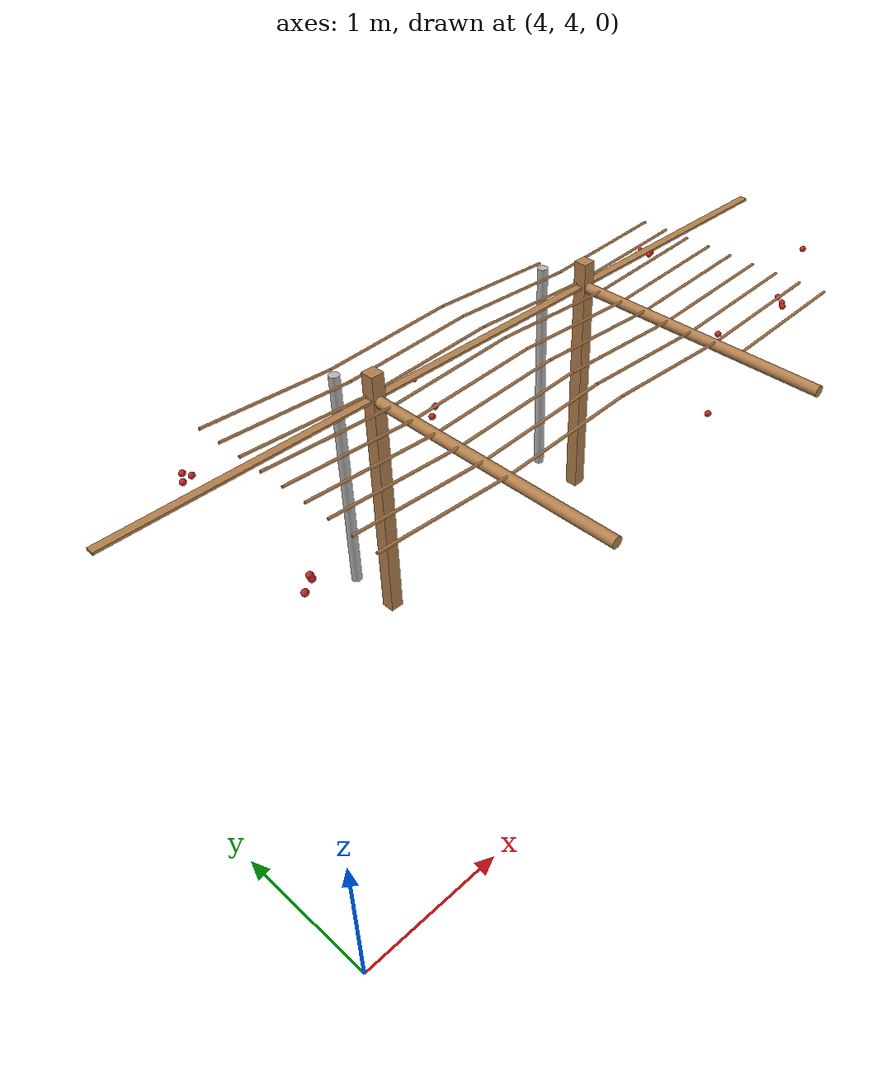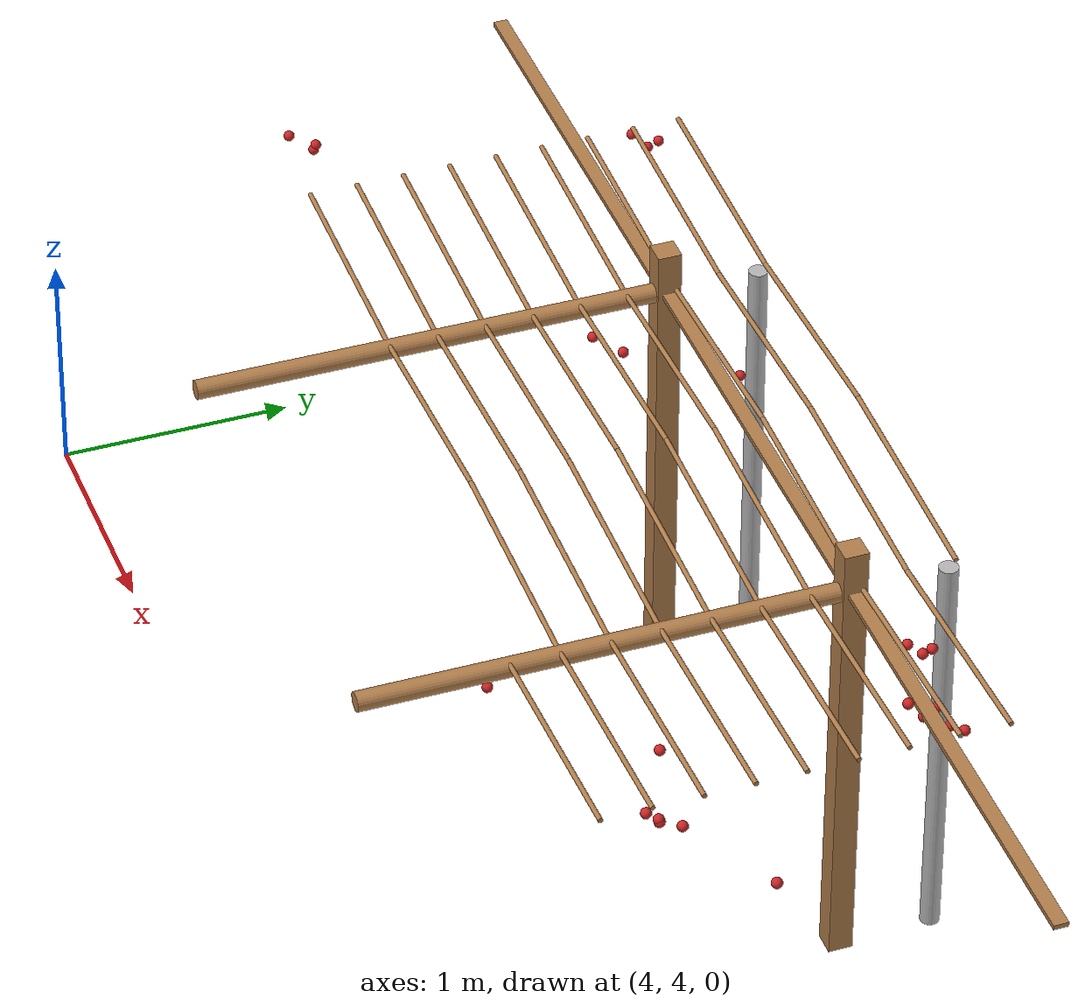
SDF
<sdf version="1.4">
 <model name="pergola">
  <include><name>post_36</name><pose>6.0 6.0 0 0 0 0</pose><uri>model://post</uri></include>
  <include><name>post_47</name><pose>8.0 6.0 0 0 0 0</pose><uri>model://post</uri></include>
  <link name="beam_25">
   <pose>5.0 6.0 1.81 0 0 0</pose>
   <collision name="collision"><geometry><box><size>2.0 0.06 0.02</size></box></geometry></collision>
   <visual name="visual">
    <geometry><box><size>2.0 0.06 0.02</size></box></geometry>
    <material><script><name>Gazebo/Wood</name></script></material>
   </visual>
   <inertial>
    <mass>5</mass>
    <inertia>
     <ixx>0.0016666666666666668</ixx>
     <ixy>0.0</ixy>
     <ixz>0.0</ixz>
     <iyy>1.6681666666666664</iyy>
     <iyz>0.0</iyz>
     <izz>1.6668333333333332</izz>
    </inertia>
   </inertial>
  </link>
  <link name="beam_36">
   <pose>7.0 6.0 1.81 0 0 0</pose>
   <collision name="collision"><geometry><box><size>2.0 0.06 0.02</size></box></geometry></collision>
   <visual name="visual">
    <geometry><box><size>2.0 0.06 0.02</size></box></geometry>
    <material><script><name>Gazebo/Wood</name></script></material>
   </visual>
   <inertial>
    <mass>5</mass>
    <inertia>
     <ixx>0.0016666666666666668</ixx>
     <ixy>0.0</ixy>
     <ixz>0.0</ixz>
     <iyy>1.6681666666666664</iyy>
     <iyz>0.0</iyz>
     <izz>1.6668333333333332</izz>
    </inertia>
   </inertial>
  </link>
  <link name="beam_47">
   <pose>9.0 6.0 1.81 0 0 0</pose>
   <collision name="collision"><geometry><box><size>2.0 0.06 0.02</size></box></geometry></collision>
   <visual name="visual">
    <geometry><box><size>2.0 0.06 0.02</size></box></geometry>
    <material><script><name>Gazebo/Wood</name></script></material>
   </visual>
   <inertial>
    <mass>5</mass>
    <inertia>
     <ixx>0.0016666666666666668</ixx>
     <ixy>0.0</ixy>
     <ixz>0.0</ixz>
     <iyy>1.6681666666666664</iyy>
     <iyz>0.0</iyz>
     <izz>1.6668333333333332</izz>
    </inertia>
   </inertial>
  </link>
  <include><name>tree_33</name><pose>6.0 6.4 0 0 0 0</pose><uri>model://tree_trunk</uri></include>
  <include><name>tree_43</name><pose>8.0 6.4 0 0 0 0</pose><uri>model://tree_trunk</uri></include>
  <link name="baseBranch_32">
   <pose>6.0 5.0 1.8 1.5707963267948966 0 0</pose>
   <collision name="collision">
    <geometry><cylinder><radius>0.04</radius><length>1.94</length></cylinder></geometry>
   </collision>
   <visual name="visual">
    <geometry><cylinder><radius>0.04</radius><length>1.94</length></cylinder></geometry>
    <material><script><name>Gazebo/WoodFloor</name></script></material>
   </visual>
   <inertial>
    <mass>10</mass>
    <inertia>
     <ixx>3.140333333333333</ixx>
     <ixy>0.0</ixy>
     <ixz>0.0</ixz>
     <iyy>3.140333333333333</iyy>
     <iyz>0.0</iyz>
     <izz>0.008</izz>
    </inertia>
   </inertial>
  </link>
  <link name="baseBranch_42">
   <pose>8.0 5.0 1.8 1.5707963267948966 0 0</pose>
   <collision name="collision">
    <geometry><cylinder><radius>0.04</radius><length>1.94</length></cylinder></geometry>
   </collision>
   <visual name="visual">
    <geometry><cylinder><radius>0.04</radius><length>1.94</length></cylinder></geometry>
    <material><script><name>Gazebo/WoodFloor</name></script></material>
   </visual>
   <inertial>
    <mass>10</mass>
    <inertia>
     <ixx>3.140333333333333</ixx>
     <ixy>0.0</ixy>
     <ixz>0.0</ixz>
     <iyy>3.140333333333333</iyy>
     <iyz>0.0</iyz>
     <izz>0.008</izz>
    </inertia>
   </inertial>
  </link>
  <link name="vine_449">
   <pose>5.5 4.830000000000001 1.85 0 -1.5208379310729538 0</pose>
   <collision name="collision">
    <geometry><cylinder><radius>0.01</radius><length>1.0012492197250393</length></cylinder></geometry>
   </collision>
   <visual name="visual">
    <geometry><cylinder><radius>0.01</radius><length>1.0012492197250393</length></cylinder></geometry>
    <material><script><name>Gazebo/WoodFloor</name></script></material>
   </visual>
   <inertial>
    <mass>5</mass>
    <inertia>
     <ixx>0.41783333333333345</ixx>
     <ixy>0.0</ixy>
     <ixz>0.0</ixz>
     <iyy>0.41783333333333345</iyy>
     <iyz>0.0</iyz>
     <izz>0.00025</izz>
    </inertia>
   </inertial>
  </link>
  <link name="vine_451">
   <pose>5.5 5.03 1.85 0 -1.5208379310729538 0</pose>
   <collision name="collision">
    <geometry><cylinder><radius>0.01</radius><length>1.0012492197250393</length></cylinder></geometry>
   </collision>
   <visual name="visual">
    <geometry><cylinder><radius>0.01</radius><length>1.0012492197250393</length></cylinder></geometry>
    <material><script><name>Gazebo/WoodFloor</name></script></material>
   </visual>
   <inertial>
    <mass>5</mass>
    <inertia>
     <ixx>0.41783333333333345</ixx>
     <ixy>0.0</ixy>
     <ixz>0.0</ixz>
     <iyy>0.41783333333333345</iyy>
     <iyz>0.0</iyz>
     <izz>0.00025</izz>
    </inertia>
   </inertial>
  </link>
  <link name="vine_453">
   <pose>5.5 5.23 1.85 0 -1.5208379310729538 0</pose>
   <collision name="collision">
    <geometry><cylinder><radius>0.01</radius><length>1.0012492197250393</length></cylinder></geometry>
   </collision>
   <visual name="visual">
    <geometry><cylinder><radius>0.01</radius><length>1.0012492197250393</length></cylinder></geometry>
    <material><script><name>Gazebo/WoodFloor</name></script></material>
   </visual>
   <inertial>
    <mass>5</mass>
    <inertia>
     <ixx>0.41783333333333345</ixx>
     <ixy>0.0</ixy>
     <ixz>0.0</ixz>
     <iyy>0.41783333333333345</iyy>
     <iyz>0.0</iyz>
     <izz>0.00025</izz>
    </inertia>
   </inertial>
  </link>
  <link name="vine_455">
   <pose>5.5 5.430000000000001 1.85 0 -1.5208379310729538 0</pose>
   <collision name="collision">
    <geometry><cylinder><radius>0.01</radius><length>1.0012492197250393</length></cylinder></geometry>
   </collision>
   <visual name="visual">
    <geometry><cylinder><radius>0.01</radius><length>1.0012492197250393</length></cylinder></geometry>
    <material><script><name>Gazebo/WoodFloor</name></script></material>
   </visual>
   <inertial>
    <mass>5</mass>
    <inertia>
     <ixx>0.41783333333333345</ixx>
     <ixy>0.0</ixy>
     <ixz>0.0</ixz>
     <iyy>0.41783333333333345</iyy>
     <iyz>0.0</iyz>
     <izz>0.00025</izz>
    </inertia>
   </inertial>
  </link>
  <link name="vine_457">
   <pose>5.5 5.630000000000001 1.85 0 -1.5208379310729538 0</pose>
   <collision name="collision">
    <geometry><cylinder><radius>0.01</radius><length>1.0012492197250393</length></cylinder></geometry>
   </collision>
   <visual name="visual">
    <geometry><cylinder><radius>0.01</radius><length>1.0012492197250393</length></cylinder></geometry>
    <material><script><name>Gazebo/WoodFloor</name></script></material>
   </visual>
   <inertial>
    <mass>5</mass>
    <inertia>
     <ixx>0.41783333333333345</ixx>
     <ixy>0.0</ixy>
     <ixz>0.0</ixz>
     <iyy>0.41783333333333345</iyy>
     <iyz>0.0</iyz>
     <izz>0.00025</izz>
    </inertia>
   </inertial>
  </link>
  <link name="vine_459">
   <pose>5.5 5.830000000000001 1.85 0 -1.5208379310729538 0</pose>
   <collision name="collision">
    <geometry><cylinder><radius>0.01</radius><length>1.0012492197250393</length></cylinder></geometry>
   </collision>
   <visual name="visual">
    <geometry><cylinder><radius>0.01</radius><length>1.0012492197250393</length></cylinder></geometry>
    <material><script><name>Gazebo/WoodFloor</name></script></material>
   </visual>
   <inertial>
    <mass>5</mass>
    <inertia>
     <ixx>0.41783333333333345</ixx>
     <ixy>0.0</ixy>
     <ixz>0.0</ixz>
     <iyy>0.41783333333333345</iyy>
     <iyz>0.0</iyz>
     <izz>0.00025</izz>
    </inertia>
   </inertial>
  </link>
  <link name="vine_461">
   <pose>5.5 6.03 1.85 0 -1.5208379310729538 0</pose>
   <collision name="collision">
    <geometry><cylinder><radius>0.01</radius><length>1.0012492197250393</length></cylinder></geometry>
   </collision>
   <visual name="visual">
    <geometry><cylinder><radius>0.01</radius><length>1.0012492197250393</length></cylinder></geometry>
    <material><script><name>Gazebo/WoodFloor</name></script></material>
   </visual>
   <inertial>
    <mass>5</mass>
    <inertia>
     <ixx>0.41783333333333345</ixx>
     <ixy>0.0</ixy>
     <ixz>0.0</ixz>
     <iyy>0.41783333333333345</iyy>
     <iyz>0.0</iyz>
     <izz>0.00025</izz>
    </inertia>
   </inertial>
  </link>
  <link name="vine_463">
   <pose>5.5 6.23 1.85 0 -1.5208379310729538 0</pose>
   <collision name="collision">
    <geometry><cylinder><radius>0.01</radius><length>1.0012492197250393</length></cylinder></geometry>
   </collision>
   <visual name="visual">
    <geometry><cylinder><radius>0.01</radius><length>1.0012492197250393</length></cylinder></geometry>
    <material><script><name>Gazebo/WoodFloor</name></script></material>
   </visual>
   <inertial>
    <mass>5</mass>
    <inertia>
     <ixx>0.41783333333333345</ixx>
     <ixy>0.0</ixy>
     <ixz>0.0</ixz>
     <iyy>0.41783333333333345</iyy>
     <iyz>0.0</iyz>
     <izz>0.00025</izz>
    </inertia>
   </inertial>
  </link>
  <link name="vine_465">
   <pose>5.5 6.430000000000001 1.85 0 -1.5208379310729538 0</pose>
   <collision name="collision">
    <geometry><cylinder><radius>0.01</radius><length>1.0012492197250393</length></cylinder></geometry>
   </collision>
   <visual name="visual">
    <geometry><cylinder><radius>0.01</radius><length>1.0012492197250393</length></cylinder></geometry>
    <material><script><name>Gazebo/WoodFloor</name></script></material>
   </visual>
   <inertial>
    <mass>5</mass>
    <inertia>
     <ixx>0.41783333333333345</ixx>
     <ixy>0.0</ixy>
     <ixz>0.0</ixz>
     <iyy>0.41783333333333345</iyy>
     <iyz>0.0</iyz>
     <izz>0.00025</izz>
    </inertia>
   </inertial>
  </link>
  <link name="vine_648">
   <pose>6.5 4.830000000000001 1.85 0 1.5208379310729538 0</pose>
   <collision name="collision">
    <geometry><cylinder><radius>0.01</radius><length>1.0012492197250393</length></cylinder></geometry>
   </collision>
   <visual name="visual">
    <geometry><cylinder><radius>0.01</radius><length>1.0012492197250393</length></cylinder></geometry>
    <material><script><name>Gazebo/WoodFloor</name></script></material>
   </visual>
   <inertial>
    <mass>5</mass>
    <inertia>
     <ixx>0.41783333333333345</ixx>
     <ixy>0.0</ixy>
     <ixz>0.0</ixz>
     <iyy>0.41783333333333345</iyy>
     <iyz>0.0</iyz>
     <izz>0.00025</izz>
    </inertia>
   </inertial>
  </link>
  <link name="vine_649">
   <pose>7.5 4.830000000000001 1.85 0 -1.5208379310729538 0</pose>
   <collision name="collision">
    <geometry><cylinder><radius>0.01</radius><length>1.0012492197250393</length></cylinder></geometry>
   </collision>
   <visual name="visual">
    <geometry><cylinder><radius>0.01</radius><length>1.0012492197250393</length></cylinder></geometry>
    <material><script><name>Gazebo/WoodFloor</name></script></material>
   </visual>
   <inertial>
    <mass>5</mass>
    <inertia>
     <ixx>0.41783333333333345</ixx>
     <ixy>0.0</ixy>
     <ixz>0.0</ixz>
     <iyy>0.41783333333333345</iyy>
     <iyz>0.0</iyz>
     <izz>0.00025</izz>
    </inertia>
   </inertial>
  </link>
  <link name="vine_650">
   <pose>6.5 5.03 1.85 0 1.5208379310729538 0</pose>
   <collision name="collision">
    <geometry><cylinder><radius>0.01</radius><length>1.0012492197250393</length></cylinder></geometry>
   </collision>
   <visual name="visual">
    <geometry><cylinder><radius>0.01</radius><length>1.0012492197250393</length></cylinder></geometry>
    <material><script><name>Gazebo/WoodFloor</name></script></material>
   </visual>
   <inertial>
    <mass>5</mass>
    <inertia>
     <ixx>0.41783333333333345</ixx>
     <ixy>0.0</ixy>
     <ixz>0.0</ixz>
     <iyy>0.41783333333333345</iyy>
     <iyz>0.0</iyz>
     <izz>0.00025</izz>
    </inertia>
   </inertial>
  </link>
  <link name="vine_651">
   <pose>7.5 5.03 1.85 0 -1.5208379310729538 0</pose>
   <collision name="collision">
    <geometry><cylinder><radius>0.01</radius><length>1.0012492197250393</length></cylinder></geometry>
   </collision>
   <visual name="visual">
    <geometry><cylinder><radius>0.01</radius><length>1.0012492197250393</length></cylinder></geometry>
    <material><script><name>Gazebo/WoodFloor</name></script></material>
   </visual>
   <inertial>
    <mass>5</mass>
    <inertia>
     <ixx>0.41783333333333345</ixx>
     <ixy>0.0</ixy>
     <ixz>0.0</ixz>
     <iyy>0.41783333333333345</iyy>
     <iyz>0.0</iyz>
     <izz>0.00025</izz>
    </inertia>
   </inertial>
  </link>
  <link name="vine_652">
   <pose>6.5 5.23 1.85 0 1.5208379310729538 0</pose>
   <collision name="collision">
    <geometry><cylinder><radius>0.01</radius><length>1.0012492197250393</length></cylinder></geometry>
   </collision>
   <visual name="visual">
    <geometry><cylinder><radius>0.01</radius><length>1.0012492197250393</length></cylinder></geometry>
    <material><script><name>Gazebo/WoodFloor</name></script></material>
   </visual>
   <inertial>
    <mass>5</mass>
    <inertia>
     <ixx>0.41783333333333345</ixx>
     <ixy>0.0</ixy>
     <ixz>0.0</ixz>
     <iyy>0.41783333333333345</iyy>
     <iyz>0.0</iyz>
     <izz>0.00025</izz>
    </inertia>
   </inertial>
  </link>
  <link name="vine_653">
   <pose>7.5 5.23 1.85 0 -1.5208379310729538 0</pose>
   <collision name="collision">
    <geometry><cylinder><radius>0.01</radius><length>1.0012492197250393</length></cylinder></geometry>
   </collision>
   <visual name="visual">
    <geometry><cylinder><radius>0.01</radius><length>1.0012492197250393</length></cylinder></geometry>
    <material><script><name>Gazebo/WoodFloor</name></script></material>
   </visual>
   <inertial>
    <mass>5</mass>
    <inertia>
     <ixx>0.41783333333333345</ixx>
     <ixy>0.0</ixy>
     <ixz>0.0</ixz>
     <iyy>0.41783333333333345</iyy>
     <iyz>0.0</iyz>
     <izz>0.00025</izz>
    </inertia>
   </inertial>
  </link>
  <link name="vine_654">
   <pose>6.5 5.430000000000001 1.85 0 1.5208379310729538 0</pose>
   <collision name="collision">
    <geometry><cylinder><radius>0.01</radius><length>1.0012492197250393</length></cylinder></geometry>
   </collision>
   <visual name="visual">
    <geometry><cylinder><radius>0.01</radius><length>1.0012492197250393</length></cylinder></geometry>
    <material><script><name>Gazebo/WoodFloor</name></script></material>
   </visual>
   <inertial>
    <mass>5</mass>
    <inertia>
     <ixx>0.41783333333333345</ixx>
     <ixy>0.0</ixy>
     <ixz>0.0</ixz>
     <iyy>0.41783333333333345</iyy>
     <iyz>0.0</iyz>
     <izz>0.00025</izz>
    </inertia>
   </inertial>
  </link>
  <link name="vine_655">
   <pose>7.5 5.430000000000001 1.85 0 -1.5208379310729538 0</pose>
   <collision name="collision">
    <geometry><cylinder><radius>0.01</radius><length>1.0012492197250393</length></cylinder></geometry>
   </collision>
   <visual name="visual">
    <geometry><cylinder><radius>0.01</radius><length>1.0012492197250393</length></cylinder></geometry>
    <material><script><name>Gazebo/WoodFloor</name></script></material>
   </visual>
   <inertial>
    <mass>5</mass>
    <inertia>
     <ixx>0.41783333333333345</ixx>
     <ixy>0.0</ixy>
     <ixz>0.0</ixz>
     <iyy>0.41783333333333345</iyy>
     <iyz>0.0</iyz>
     <izz>0.00025</izz>
    </inertia>
   </inertial>
  </link>
  <link name="vine_656">
   <pose>6.5 5.630000000000001 1.85 0 1.5208379310729538 0</pose>
   <collision name="collision">
    <geometry><cylinder><radius>0.01</radius><length>1.0012492197250393</length></cylinder></geometry>
   </collision>
   <visual name="visual">
    <geometry><cylinder><radius>0.01</radius><length>1.0012492197250393</length></cylinder></geometry>
    <material><script><name>Gazebo/WoodFloor</name></script></material>
   </visual>
   <inertial>
    <mass>5</mass>
    <inertia>
     <ixx>0.41783333333333345</ixx>
     <ixy>0.0</ixy>
     <ixz>0.0</ixz>
     <iyy>0.41783333333333345</iyy>
     <iyz>0.0</iyz>
     <izz>0.00025</izz>
    </inertia>
   </inertial>
  </link>
  <link name="vine_657">
   <pose>7.5 5.630000000000001 1.85 0 -1.5208379310729538 0</pose>
   <collision name="collision">
    <geometry><cylinder><radius>0.01</radius><length>1.0012492197250393</length></cylinder></geometry>
   </collision>
   <visual name="visual">
    <geometry><cylinder><radius>0.01</radius><length>1.0012492197250393</length></cylinder></geometry>
    <material><script><name>Gazebo/WoodFloor</name></script></material>
   </visual>
   <inertial>
    <mass>5</mass>
    <inertia>
     <ixx>0.41783333333333345</ixx>
     <ixy>0.0</ixy>
     <ixz>0.0</ixz>
     <iyy>0.41783333333333345</iyy>
     <iyz>0.0</iyz>
     <izz>0.00025</izz>
    </inertia>
   </inertial>
  </link>
  <link name="vine_658">
   <pose>6.5 5.830000000000001 1.85 0 1.5208379310729538 0</pose>
   <collision name="collision">
    <geometry><cylinder><radius>0.01</radius><length>1.0012492197250393</length></cylinder></geometry>
   </collision>
   <visual name="visual">
    <geometry><cylinder><radius>0.01</radius><length>1.0012492197250393</length></cylinder></geometry>
    <material><script><name>Gazebo/WoodFloor</name></script></material>
   </visual>
   <inertial>
    <mass>5</mass>
    <inertia>
     <ixx>0.41783333333333345</ixx>
     <ixy>0.0</ixy>
     <ixz>0.0</ixz>
     <iyy>0.41783333333333345</iyy>
     <iyz>0.0</iyz>
     <izz>0.00025</izz>
    </inertia>
   </inertial>
  </link>
  <link name="vine_659">
   <pose>7.5 5.830000000000001 1.85 0 -1.5208379310729538 0</pose>
   <collision name="collision">
    <geometry><cylinder><radius>0.01</radius><length>1.0012492197250393</length></cylinder></geometry>
   </collision>
   <visual name="visual">
    <geometry><cylinder><radius>0.01</radius><length>1.0012492197250393</length></cylinder></geometry>
    <material><script><name>Gazebo/WoodFloor</name></script></material>
   </visual>
   <inertial>
    <mass>5</mass>
    <inertia>
     <ixx>0.41783333333333345</ixx>
     <ixy>0.0</ixy>
     <ixz>0.0</ixz>
     <iyy>0.41783333333333345</iyy>
     <iyz>0.0</iyz>
     <izz>0.00025</izz>
    </inertia>
   </inertial>
  </link>
  <link name="vine_660">
   <pose>6.5 6.03 1.85 0 1.5208379310729538 0</pose>
   <collision name="collision">
    <geometry><cylinder><radius>0.01</radius><length>1.0012492197250393</length></cylinder></geometry>
   </collision>
   <visual name="visual">
    <geometry><cylinder><radius>0.01</radius><length>1.0012492197250393</length></cylinder></geometry>
    <material><script><name>Gazebo/WoodFloor</name></script></material>
   </visual>
   <inertial>
    <mass>5</mass>
    <inertia>
     <ixx>0.41783333333333345</ixx>
     <ixy>0.0</ixy>
     <ixz>0.0</ixz>
     <iyy>0.41783333333333345</iyy>
     <iyz>0.0</iyz>
     <izz>0.00025</izz>
    </inertia>
   </inertial>
  </link>
  <link name="vine_661">
   <pose>7.5 6.03 1.85 0 -1.5208379310729538 0</pose>
   <collision name="collision">
    <geometry><cylinder><radius>0.01</radius><length>1.0012492197250393</length></cylinder></geometry>
   </collision>
   <visual name="visual">
    <geometry><cylinder><radius>0.01</radius><length>1.0012492197250393</length></cylinder></geometry>
    <material><script><name>Gazebo/WoodFloor</name></script></material>
   </visual>
   <inertial>
    <mass>5</mass>
    <inertia>
     <ixx>0.41783333333333345</ixx>
     <ixy>0.0</ixy>
     <ixz>0.0</ixz>
     <iyy>0.41783333333333345</iyy>
     <iyz>0.0</iyz>
     <izz>0.00025</izz>
    </inertia>
   </inertial>
  </link>
  <link name="vine_662">
   <pose>6.5 6.23 1.85 0 1.5208379310729538 0</pose>
   <collision name="collision">
    <geometry><cylinder><radius>0.01</radius><length>1.0012492197250393</length></cylinder></geometry>
   </collision>
   <visual name="visual">
    <geometry><cylinder><radius>0.01</radius><length>1.0012492197250393</length></cylinder></geometry>
    <material><script><name>Gazebo/WoodFloor</name></script></material>
   </visual>
   <inertial>
    <mass>5</mass>
    <inertia>
     <ixx>0.41783333333333345</ixx>
     <ixy>0.0</ixy>
     <ixz>0.0</ixz>
     <iyy>0.41783333333333345</iyy>
     <iyz>0.0</iyz>
     <izz>0.00025</izz>
    </inertia>
   </inertial>
  </link>
  <link name="vine_663">
   <pose>7.5 6.23 1.85 0 -1.5208379310729538 0</pose>
   <collision name="collision">
    <geometry><cylinder><radius>0.01</radius><length>1.0012492197250393</length></cylinder></geometry>
   </collision>
   <visual name="visual">
    <geometry><cylinder><radius>0.01</radius><length>1.0012492197250393</length></cylinder></geometry>
    <material><script><name>Gazebo/WoodFloor</name></script></material>
   </visual>
   <inertial>
    <mass>5</mass>
    <inertia>
     <ixx>0.41783333333333345</ixx>
     <ixy>0.0</ixy>
     <ixz>0.0</ixz>
     <iyy>0.41783333333333345</iyy>
     <iyz>0.0</iyz>
     <izz>0.00025</izz>
    </inertia>
   </inertial>
  </link>
  <link name="vine_664">
   <pose>6.5 6.430000000000001 1.85 0 1.5208379310729538 0</pose>
   <collision name="collision">
    <geometry><cylinder><radius>0.01</radius><length>1.0012492197250393</length></cylinder></geometry>
   </collision>
   <visual name="visual">
    <geometry><cylinder><radius>0.01</radius><length>1.0012492197250393</length></cylinder></geometry>
    <material><script><name>Gazebo/WoodFloor</name></script></material>
   </visual>
   <inertial>
    <mass>5</mass>
    <inertia>
     <ixx>0.41783333333333345</ixx>
     <ixy>0.0</ixy>
     <ixz>0.0</ixz>
     <iyy>0.41783333333333345</iyy>
     <iyz>0.0</iyz>
     <izz>0.00025</izz>
    </inertia>
   </inertial>
  </link>
  <link name="vine_665">
   <pose>7.5 6.430000000000001 1.85 0 -1.5208379310729538 0</pose>
   <collision name="collision">
    <geometry><cylinder><radius>0.01</radius><length>1.0012492197250393</length></cylinder></geometry>
   </collision>
   <visual name="visual">
    <geometry><cylinder><radius>0.01</radius><length>1.0012492197250393</length></cylinder></geometry>
    <material><script><name>Gazebo/WoodFloor</name></script></material>
   </visual>
   <inertial>
    <mass>5</mass>
    <inertia>
     <ixx>0.41783333333333345</ixx>
     <ixy>0.0</ixy>
     <ixz>0.0</ixz>
     <iyy>0.41783333333333345</iyy>
     <iyz>0.0</iyz>
     <izz>0.00025</izz>
    </inertia>
   </inertial>
  </link>
  <link name="vine_846">
   <pose>8.5 4.630000000000001 1.85 0 1.5208379310729538 0</pose>
   <collision name="collision">
    <geometry><cylinder><radius>0.01</radius><length>1.0012492197250393</length></cylinder></geometry>
   </collision>
   <visual name="visual">
    <geometry><cylinder><radius>0.01</radius><length>1.0012492197250393</length></cylinder></geometry>
    <material><script><name>Gazebo/WoodFloor</name></script></material>
   </visual>
   <inertial>
    <mass>5</mass>
    <inertia>
     <ixx>0.41783333333333345</ixx>
     <ixy>0.0</ixy>
     <ixz>0.0</ixz>
     <iyy>0.41783333333333345</iyy>
     <iyz>0.0</iyz>
     <izz>0.00025</izz>
    </inertia>
   </inertial>
  </link>
  <link name="vine_848">
   <pose>8.5 4.830000000000001 1.85 0 1.5208379310729538 0</pose>
   <collision name="collision">
    <geometry><cylinder><radius>0.01</radius><length>1.0012492197250393</length></cylinder></geometry>
   </collision>
   <visual name="visual">
    <geometry><cylinder><radius>0.01</radius><length>1.0012492197250393</length></cylinder></geometry>
    <material><script><name>Gazebo/WoodFloor</name></script></material>
   </visual>
   <inertial>
    <mass>5</mass>
    <inertia>
     <ixx>0.41783333333333345</ixx>
     <ixy>0.0</ixy>
     <ixz>0.0</ixz>
     <iyy>0.41783333333333345</iyy>
     <iyz>0.0</iyz>
     <izz>0.00025</izz>
    </inertia>
   </inertial>
  </link>
  <link name="vine_850">
   <pose>8.5 5.03 1.85 0 1.5208379310729538 0</pose>
   <collision name="collision">
    <geometry><cylinder><radius>0.01</radius><length>1.0012492197250393</length></cylinder></geometry>
   </collision>
   <visual name="visual">
    <geometry><cylinder><radius>0.01</radius><length>1.0012492197250393</length></cylinder></geometry>
    <material><script><name>Gazebo/WoodFloor</name></script></material>
   </visual>
   <inertial>
    <mass>5</mass>
    <inertia>
     <ixx>0.41783333333333345</ixx>
     <ixy>0.0</ixy>
     <ixz>0.0</ixz>
     <iyy>0.41783333333333345</iyy>
     <iyz>0.0</iyz>
     <izz>0.00025</izz>
    </inertia>
   </inertial>
  </link>
  <link name="vine_852">
   <pose>8.5 5.23 1.85 0 1.5208379310729538 0</pose>
   <collision name="collision">
    <geometry><cylinder><radius>0.01</radius><length>1.0012492197250393</length></cylinder></geometry>
   </collision>
   <visual name="visual">
    <geometry><cylinder><radius>0.01</radius><length>1.0012492197250393</length></cylinder></geometry>
    <material><script><name>Gazebo/WoodFloor</name></script></material>
   </visual>
   <inertial>
    <mass>5</mass>
    <inertia>
     <ixx>0.41783333333333345</ixx>
     <ixy>0.0</ixy>
     <ixz>0.0</ixz>
     <iyy>0.41783333333333345</iyy>
     <iyz>0.0</iyz>
     <izz>0.00025</izz>
    </inertia>
   </inertial>
  </link>
  <link name="vine_854">
   <pose>8.5 5.430000000000001 1.85 0 1.5208379310729538 0</pose>
   <collision name="collision">
    <geometry><cylinder><radius>0.01</radius><length>1.0012492197250393</length></cylinder></geometry>
   </collision>
   <visual name="visual">
    <geometry><cylinder><radius>0.01</radius><length>1.0012492197250393</length></cylinder></geometry>
    <material><script><name>Gazebo/WoodFloor</name></script></material>
   </visual>
   <inertial>
    <mass>5</mass>
    <inertia>
     <ixx>0.41783333333333345</ixx>
     <ixy>0.0</ixy>
     <ixz>0.0</ixz>
     <iyy>0.41783333333333345</iyy>
     <iyz>0.0</iyz>
     <izz>0.00025</izz>
    </inertia>
   </inertial>
  </link>
  <link name="vine_856">
   <pose>8.5 5.630000000000001 1.85 0 1.5208379310729538 0</pose>
   <collision name="collision">
    <geometry><cylinder><radius>0.01</radius><length>1.0012492197250393</length></cylinder></geometry>
   </collision>
   <visual name="visual">
    <geometry><cylinder><radius>0.01</radius><length>1.0012492197250393</length></cylinder></geometry>
    <material><script><name>Gazebo/WoodFloor</name></script></material>
   </visual>
   <inertial>
    <mass>5</mass>
    <inertia>
     <ixx>0.41783333333333345</ixx>
     <ixy>0.0</ixy>
     <ixz>0.0</ixz>
     <iyy>0.41783333333333345</iyy>
     <iyz>0.0</iyz>
     <izz>0.00025</izz>
    </inertia>
   </inertial>
  </link>
  <link name="vine_858">
   <pose>8.5 5.830000000000001 1.85 0 1.5208379310729538 0</pose>
   <collision name="collision">
    <geometry><cylinder><radius>0.01</radius><length>1.0012492197250393</length></cylinder></geometry>
   </collision>
   <visual name="visual">
    <geometry><cylinder><radius>0.01</radius><length>1.0012492197250393</length></cylinder></geometry>
    <material><script><name>Gazebo/WoodFloor</name></script></material>
   </visual>
   <inertial>
    <mass>5</mass>
    <inertia>
     <ixx>0.41783333333333345</ixx>
     <ixy>0.0</ixy>
     <ixz>0.0</ixz>
     <iyy>0.41783333333333345</iyy>
     <iyz>0.0</iyz>
     <izz>0.00025</izz>
    </inertia>
   </inertial>
  </link>
  <link name="vine_860">
   <pose>8.5 6.03 1.85 0 1.5208379310729538 0</pose>
   <collision name="collision">
    <geometry><cylinder><radius>0.01</radius><length>1.0012492197250393</length></cylinder></geometry>
   </collision>
   <visual name="visual">
    <geometry><cylinder><radius>0.01</radius><length>1.0012492197250393</length></cylinder></geometry>
    <material><script><name>Gazebo/WoodFloor</name></script></material>
   </visual>
   <inertial>
    <mass>5</mass>
    <inertia>
     <ixx>0.41783333333333345</ixx>
     <ixy>0.0</ixy>
     <ixz>0.0</ixz>
     <iyy>0.41783333333333345</iyy>
     <iyz>0.0</iyz>
     <izz>0.00025</izz>
    </inertia>
   </inertial>
  </link>
  <link name="vine_862">
   <pose>8.5 6.23 1.85 0 1.5208379310729538 0</pose>
   <collision name="collision">
    <geometry><cylinder><radius>0.01</radius><length>1.0012492197250393</length></cylinder></geometry>
   </collision>
   <visual name="visual">
    <geometry><cylinder><radius>0.01</radius><length>1.0012492197250393</length></cylinder></geometry>
    <material><script><name>Gazebo/WoodFloor</name></script></material>
   </visual>
   <inertial>
    <mass>5</mass>
    <inertia>
     <ixx>0.41783333333333345</ixx>
     <ixy>0.0</ixy>
     <ixz>0.0</ixz>
     <iyy>0.41783333333333345</iyy>
     <iyz>0.0</iyz>
     <izz>0.00025</izz>
    </inertia>
   </inertial>
  </link>
  <link name="fruit_32">
   <pose>8.861666966088686 4.857711012494044 1.7282393560205762 0 0 0</pose>
   <collision name="fruit_collision_32"><geometry><sphere><radius>0.022</radius></sphere></geometry></collision>
   <visual name="visual">
    <geometry><sphere><radius>0.022</radius></sphere></geometry>
    <material><script><name>Gazebo/Red</name></script></material>
   </visual>
   <inertial>
    <mass>0.05</mass>
    <inertia>
     <ixx>9.679999999999999e-06</ixx>
     <ixy>0.0</ixy>
     <ixz>0.0</ixz>
     <iyy>9.679999999999999e-06</iyy>
     <iyz>0.0</iyz>
     <izz>9.679999999999999e-06</izz>
    </inertia>
   </inertial>
   <sensor name="fruit_contact_32" type="contact">
    <contact><collision>fruit_collision_32</collision></contact>
   </sensor>
  </link>
  <link name="fruit_46">
   <pose>8.697477591928195 5.94947694558356 1.8085617949235984 0 0 0</pose>
   <collision name="fruit_collision_46"><geometry><sphere><radius>0.022</radius></sphere></geometry></collision>
   <visual name="visual">
    <geometry><sphere><radius>0.022</radius></sphere></geometry>
    <material><script><name>Gazebo/Red</name></script></material>
   </visual>
   <inertial>
    <mass>0.05</mass>
    <inertia>
     <ixx>9.679999999999999e-06</ixx>
     <ixy>0.0</ixy>
     <ixz>0.0</ixz>
     <iyy>9.679999999999999e-06</iyy>
     <iyz>0.0</iyz>
     <izz>9.679999999999999e-06</izz>
    </inertia>
   </inertial>
   <sensor name="fruit_contact_46" type="contact">
    <contact><collision>fruit_collision_46</collision></contact>
   </sensor>
  </link>
  <link name="fruit_61">
   <pose>4.766290979986759 6.314474842747729 1.66887330937503 0 0 0</pose>
   <collision name="fruit_collision_61"><geometry><sphere><radius>0.022</radius></sphere></geometry></collision>
   <visual name="visual">
    <geometry><sphere><radius>0.022</radius></sphere></geometry>
    <material><script><name>Gazebo/Red</name></script></material>
   </visual>
   <inertial>
    <mass>0.05</mass>
    <inertia>
     <ixx>9.679999999999999e-06</ixx>
     <ixy>0.0</ixy>
     <ixz>0.0</ixz>
     <iyy>9.679999999999999e-06</iyy>
     <iyz>0.0</iyz>
     <izz>9.679999999999999e-06</izz>
    </inertia>
   </inertial>
   <sensor name="fruit_contact_61" type="contact">
    <contact><collision>fruit_collision_61</collision></contact>
   </sensor>
  </link>
  <link name="fruit_107">
   <pose>9.497683516705148 5.116412774988924 1.8526007193922935 0 0 0</pose>
   <collision name="fruit_collision_107"><geometry><sphere><radius>0.022</radius></sphere></geometry></collision>
   <visual name="visual">
    <geometry><sphere><radius>0.022</radius></sphere></geometry>
    <material><script><name>Gazebo/Red</name></script></material>
   </visual>
   <inertial>
    <mass>0.05</mass>
    <inertia>
     <ixx>9.679999999999999e-06</ixx>
     <ixy>0.0</ixy>
     <ixz>0.0</ixz>
     <iyy>9.679999999999999e-06</iyy>
     <iyz>0.0</iyz>
     <izz>9.679999999999999e-06</izz>
    </inertia>
   </inertial>
   <sensor name="fruit_contact_107" type="contact">
    <contact><collision>fruit_collision_107</collision></contact>
   </sensor>
  </link>
  <link name="fruit_148">
   <pose>6.462399032933561 6.147494728492 1.6654522938781684 0 0 0</pose>
   <collision name="fruit_collision_148"><geometry><sphere><radius>0.022</radius></sphere></geometry></collision>
   <visual name="visual">
    <geometry><sphere><radius>0.022</radius></sphere></geometry>
    <material><script><name>Gazebo/Red</name></script></material>
   </visual>
   <inertial>
    <mass>0.05</mass>
    <inertia>
     <ixx>9.679999999999999e-06</ixx>
     <ixy>0.0</ixy>
     <ixz>0.0</ixz>
     <iyy>9.679999999999999e-06</iyy>
     <iyz>0.0</iyz>
     <izz>9.679999999999999e-06</izz>
    </inertia>
   </inertial>
   <sensor name="fruit_contact_148" type="contact">
    <contact><collision>fruit_collision_148</collision></contact>
   </sensor>
  </link>
  <link name="fruit_156">
   <pose>8.414283782767146 5.080074368029735 1.6007153972551023 0 0 0</pose>
   <collision name="fruit_collision_156"><geometry><sphere><radius>0.022</radius></sphere></geometry></collision>
   <visual name="visual">
    <geometry><sphere><radius>0.022</radius></sphere></geometry>
    <material><script><name>Gazebo/Red</name></script></material>
   </visual>
   <inertial>
    <mass>0.05</mass>
    <inertia>
     <ixx>9.679999999999999e-06</ixx>
     <ixy>0.0</ixy>
     <ixz>0.0</ixz>
     <iyy>9.679999999999999e-06</iyy>
     <iyz>0.0</iyz>
     <izz>9.679999999999999e-06</izz>
    </inertia>
   </inertial>
   <sensor name="fruit_contact_156" type="contact">
    <contact><collision>fruit_collision_156</collision></contact>
   </sensor>
  </link>
  <link name="fruit_195">
   <pose>8.773741421221189 6.088751814689065 1.7234950998229759 0 0 0</pose>
   <collision name="fruit_collision_195"><geometry><sphere><radius>0.022</radius></sphere></geometry></collision>
   <visual name="visual">
    <geometry><sphere><radius>0.022</radius></sphere></geometry>
    <material><script><name>Gazebo/Red</name></script></material>
   </visual>
   <inertial>
    <mass>0.05</mass>
    <inertia>
     <ixx>9.679999999999999e-06</ixx>
     <ixy>0.0</ixy>
     <ixz>0.0</ixz>
     <iyy>9.679999999999999e-06</iyy>
     <iyz>0.0</iyz>
     <izz>9.679999999999999e-06</izz>
    </inertia>
   </inertial>
   <sensor name="fruit_contact_195" type="contact">
    <contact><collision>fruit_collision_195</collision></contact>
   </sensor>
  </link>
  <link name="fruit_289">
   <pose>6.151439375714304 5.637512857104206 1.764925111359044 0 0 0</pose>
   <collision name="fruit_collision_289"><geometry><sphere><radius>0.022</radius></sphere></geometry></collision>
   <visual name="visual">
    <geometry><sphere><radius>0.022</radius></sphere></geometry>
    <material><script><name>Gazebo/Red</name></script></material>
   </visual>
   <inertial>
    <mass>0.05</mass>
    <inertia>
     <ixx>9.679999999999999e-06</ixx>
     <ixy>0.0</ixy>
     <ixz>0.0</ixz>
     <iyy>9.679999999999999e-06</iyy>
     <iyz>0.0</iyz>
     <izz>9.679999999999999e-06</izz>
    </inertia>
   </inertial>
   <sensor name="fruit_contact_289" type="contact">
    <contact><collision>fruit_collision_289</collision></contact>
   </sensor>
  </link>
  <link name="fruit_330">
   <pose>4.563893469049515 4.879290928241764 1.8627083490514764 0 0 0</pose>
   <collision name="fruit_collision_330"><geometry><sphere><radius>0.022</radius></sphere></geometry></collision>
   <visual name="visual">
    <geometry><sphere><radius>0.022</radius></sphere></geometry>
    <material><script><name>Gazebo/Red</name></script></material>
   </visual>
   <inertial>
    <mass>0.05</mass>
    <inertia>
     <ixx>9.679999999999999e-06</ixx>
     <ixy>0.0</ixy>
     <ixz>0.0</ixz>
     <iyy>9.679999999999999e-06</iyy>
     <iyz>0.0</iyz>
     <izz>9.679999999999999e-06</izz>
    </inertia>
   </inertial>
   <sensor name="fruit_contact_330" type="contact">
    <contact><collision>fruit_collision_330</collision></contact>
   </sensor>
  </link>
  <link name="fruit_348">
   <pose>8.231382920139415 6.141914255875709 1.6708433779913128 0 0 0</pose>
   <collision name="fruit_collision_348"><geometry><sphere><radius>0.022</radius></sphere></geometry></collision>
   <visual name="visual">
    <geometry><sphere><radius>0.022</radius></sphere></geometry>
    <material><script><name>Gazebo/Red</name></script></material>
   </visual>
   <inertial>
    <mass>0.05</mass>
    <inertia>
     <ixx>9.679999999999999e-06</ixx>
     <ixy>0.0</ixy>
     <ixz>0.0</ixz>
     <iyy>9.679999999999999e-06</iyy>
     <iyz>0.0</iyz>
     <izz>9.679999999999999e-06</izz>
    </inertia>
   </inertial>
   <sensor name="fruit_contact_348" type="contact">
    <contact><collision>fruit_collision_348</collision></contact>
   </sensor>
  </link>
  <link name="fruit_367">
   <pose>4.663952824795353 4.953020746437917 1.8436953334639579 0 0 0</pose>
   <collision name="fruit_collision_367"><geometry><sphere><radius>0.022</radius></sphere></geometry></collision>
   <visual name="visual">
    <geometry><sphere><radius>0.022</radius></sphere></geometry>
    <material><script><name>Gazebo/Red</name></script></material>
   </visual>
   <inertial>
    <mass>0.05</mass>
    <inertia>
     <ixx>9.679999999999999e-06</ixx>
     <ixy>0.0</ixy>
     <ixz>0.0</ixz>
     <iyy>9.679999999999999e-06</iyy>
     <iyz>0.0</iyz>
     <izz>9.679999999999999e-06</izz>
    </inertia>
   </inertial>
   <sensor name="fruit_contact_367" type="contact">
    <contact><collision>fruit_collision_367</collision></contact>
   </sensor>
  </link>
  <link name="fruit_497">
   <pose>6.260776464333821 5.726030574230433 1.744288814783167 0 0 0</pose>
   <collision name="fruit_collision_497"><geometry><sphere><radius>0.022</radius></sphere></geometry></collision>
   <visual name="visual">
    <geometry><sphere><radius>0.022</radius></sphere></geometry>
    <material><script><name>Gazebo/Red</name></script></material>
   </visual>
   <inertial>
    <mass>0.05</mass>
    <inertia>
     <ixx>9.679999999999999e-06</ixx>
     <ixy>0.0</ixy>
     <ixz>0.0</ixz>
     <iyy>9.679999999999999e-06</iyy>
     <iyz>0.0</iyz>
     <izz>9.679999999999999e-06</izz>
    </inertia>
   </inertial>
   <sensor name="fruit_contact_497" type="contact">
    <contact><collision>fruit_collision_497</collision></contact>
   </sensor>
  </link>
  <link name="fruit_598">
   <pose>8.910364900169771 4.8928218703632025 1.7163164687497223 0 0 0</pose>
   <collision name="fruit_collision_598"><geometry><sphere><radius>0.022</radius></sphere></geometry></collision>
   <visual name="visual">
    <geometry><sphere><radius>0.022</radius></sphere></geometry>
    <material><script><name>Gazebo/Red</name></script></material>
   </visual>
   <inertial>
    <mass>0.05</mass>
    <inertia>
     <ixx>9.679999999999999e-06</ixx>
     <ixy>0.0</ixy>
     <ixz>0.0</ixz>
     <iyy>9.679999999999999e-06</iyy>
     <iyz>0.0</iyz>
     <izz>9.679999999999999e-06</izz>
    </inertia>
   </inertial>
   <sensor name="fruit_contact_598" type="contact">
    <contact><collision>fruit_collision_598</collision></contact>
   </sensor>
  </link>
  <link name="fruit_609">
   <pose>4.82299469878458 6.412850873037796 1.649487072865209 0 0 0</pose>
   <collision name="fruit_collision_609"><geometry><sphere><radius>0.022</radius></sphere></geometry></collision>
   <visual name="visual">
    <geometry><sphere><radius>0.022</radius></sphere></geometry>
    <material><script><name>Gazebo/Red</name></script></material>
   </visual>
   <inertial>
    <mass>0.05</mass>
    <inertia>
     <ixx>9.679999999999999e-06</ixx>
     <ixy>0.0</ixy>
     <ixz>0.0</ixz>
     <iyy>9.679999999999999e-06</iyy>
     <iyz>0.0</iyz>
     <izz>9.679999999999999e-06</izz>
    </inertia>
   </inertial>
   <sensor name="fruit_contact_609" type="contact">
    <contact><collision>fruit_collision_609</collision></contact>
   </sensor>
  </link>
  <link name="fruit_621">
   <pose>4.661515403497043 4.9632486882210936 1.8623994855694785 0 0 0</pose>
   <collision name="fruit_collision_621"><geometry><sphere><radius>0.022</radius></sphere></geometry></collision>
   <visual name="visual">
    <geometry><sphere><radius>0.022</radius></sphere></geometry>
    <material><script><name>Gazebo/Red</name></script></material>
   </visual>
   <inertial>
    <mass>0.05</mass>
    <inertia>
     <ixx>9.679999999999999e-06</ixx>
     <ixy>0.0</ixy>
     <ixz>0.0</ixz>
     <iyy>9.679999999999999e-06</iyy>
     <iyz>0.0</iyz>
     <izz>9.679999999999999e-06</izz>
    </inertia>
   </inertial>
   <sensor name="fruit_contact_621" type="contact">
    <contact><collision>fruit_collision_621</collision></contact>
   </sensor>
  </link>
  <link name="fruit_690">
   <pose>7.719569418818237 4.645115026616355 1.4737323701499687 0 0 0</pose>
   <collision name="fruit_collision_690"><geometry><sphere><radius>0.022</radius></sphere></geometry></collision>
   <visual name="visual">
    <geometry><sphere><radius>0.022</radius></sphere></geometry>
    <material><script><name>Gazebo/Red</name></script></material>
   </visual>
   <inertial>
    <mass>0.05</mass>
    <inertia>
     <ixx>9.679999999999999e-06</ixx>
     <ixy>0.0</ixy>
     <ixz>0.0</ixz>
     <iyy>9.679999999999999e-06</iyy>
     <iyz>0.0</iyz>
     <izz>9.679999999999999e-06</izz>
    </inertia>
   </inertial>
   <sensor name="fruit_contact_690" type="contact">
    <contact><collision>fruit_collision_690</collision></contact>
   </sensor>
  </link>
  <link name="fruit_715">
   <pose>8.906020188382437 4.8905690124537795 1.7258315651401492 0 0 0</pose>
   <collision name="fruit_collision_715"><geometry><sphere><radius>0.022</radius></sphere></geometry></collision>
   <visual name="visual">
    <geometry><sphere><radius>0.022</radius></sphere></geometry>
    <material><script><name>Gazebo/Red</name></script></material>
   </visual>
   <inertial>
    <mass>0.05</mass>
    <inertia>
     <ixx>9.679999999999999e-06</ixx>
     <ixy>0.0</ixy>
     <ixz>0.0</ixz>
     <iyy>9.679999999999999e-06</iyy>
     <iyz>0.0</iyz>
     <izz>9.679999999999999e-06</izz>
    </inertia>
   </inertial>
   <sensor name="fruit_contact_715" type="contact">
    <contact><collision>fruit_collision_715</collision></contact>
   </sensor>
  </link>
  <link name="fruit_746">
   <pose>8.796598079543445 6.137853061560718 1.7047905355381425 0 0 0</pose>
   <collision name="fruit_collision_746"><geometry><sphere><radius>0.022</radius></sphere></geometry></collision>
   <visual name="visual">
    <geometry><sphere><radius>0.022</radius></sphere></geometry>
    <material><script><name>Gazebo/Red</name></script></material>
   </visual>
   <inertial>
    <mass>0.05</mass>
    <inertia>
     <ixx>9.679999999999999e-06</ixx>
     <ixy>0.0</ixy>
     <ixz>0.0</ixz>
     <iyy>9.679999999999999e-06</iyy>
     <iyz>0.0</iyz>
     <izz>9.679999999999999e-06</izz>
    </inertia>
   </inertial>
   <sensor name="fruit_contact_746" type="contact">
    <contact><collision>fruit_collision_746</collision></contact>
   </sensor>
  </link>
  <link name="fruit_749">
   <pose>8.277362795185693 6.223740789917723 1.6640297517677622 0 0 0</pose>
   <collision name="fruit_collision_749"><geometry><sphere><radius>0.022</radius></sphere></geometry></collision>
   <visual name="visual">
    <geometry><sphere><radius>0.022</radius></sphere></geometry>
    <material><script><name>Gazebo/Red</name></script></material>
   </visual>
   <inertial>
    <mass>0.05</mass>
    <inertia>
     <ixx>9.679999999999999e-06</ixx>
     <ixy>0.0</ixy>
     <ixz>0.0</ixz>
     <iyy>9.679999999999999e-06</iyy>
     <iyz>0.0</iyz>
     <izz>9.679999999999999e-06</izz>
    </inertia>
   </inertial>
   <sensor name="fruit_contact_749" type="contact">
    <contact><collision>fruit_collision_749</collision></contact>
   </sensor>
  </link>
  <link name="fruit_751">
   <pose>4.850535901958955 6.353821872841217 1.6503366103668842 0 0 0</pose>
   <collision name="fruit_collision_751"><geometry><sphere><radius>0.022</radius></sphere></geometry></collision>
   <visual name="visual">
    <geometry><sphere><radius>0.022</radius></sphere></geometry>
    <material><script><name>Gazebo/Red</name></script></material>
   </visual>
   <inertial>
    <mass>0.05</mass>
    <inertia>
     <ixx>9.679999999999999e-06</ixx>
     <ixy>0.0</ixy>
     <ixz>0.0</ixz>
     <iyy>9.679999999999999e-06</iyy>
     <iyz>0.0</iyz>
     <izz>9.679999999999999e-06</izz>
    </inertia>
   </inertial>
   <sensor name="fruit_contact_751" type="contact">
    <contact><collision>fruit_collision_751</collision></contact>
   </sensor>
  </link>
  <link name="fruit_801">
   <pose>8.279914657745987 6.185150671049378 1.6519694189187224 0 0 0</pose>
   <collision name="fruit_collision_801"><geometry><sphere><radius>0.022</radius></sphere></geometry></collision>
   <visual name="visual">
    <geometry><sphere><radius>0.022</radius></sphere></geometry>
    <material><script><name>Gazebo/Red</name></script></material>
   </visual>
   <inertial>
    <mass>0.05</mass>
    <inertia>
     <ixx>9.679999999999999e-06</ixx>
     <ixy>0.0</ixy>
     <ixz>0.0</ixz>
     <iyy>9.679999999999999e-06</iyy>
     <iyz>0.0</iyz>
     <izz>9.679999999999999e-06</izz>
    </inertia>
   </inertial>
   <sensor name="fruit_contact_801" type="contact">
    <contact><collision>fruit_collision_801</collision></contact>
   </sensor>
  </link>
  <link name="fruit_830">
   <pose>8.964449742931748 4.961711656711418 1.7209338429598942 0 0 0</pose>
   <collision name="fruit_collision_830"><geometry><sphere><radius>0.022</radius></sphere></geometry></collision>
   <visual name="visual">
    <geometry><sphere><radius>0.022</radius></sphere></geometry>
    <material><script><name>Gazebo/Red</name></script></material>
   </visual>
   <inertial>
    <mass>0.05</mass>
    <inertia>
     <ixx>9.679999999999999e-06</ixx>
     <ixy>0.0</ixy>
     <ixz>0.0</ixz>
     <iyy>9.679999999999999e-06</iyy>
     <iyz>0.0</iyz>
     <izz>9.679999999999999e-06</izz>
    </inertia>
   </inertial>
   <sensor name="fruit_contact_830" type="contact">
    <contact><collision>fruit_collision_830</collision></contact>
   </sensor>
  </link>
  <link name="fruit_973">
   <pose>8.730910508426183 6.052838747453294 1.7921746846803368 0 0 0</pose>
   <collision name="fruit_collision_973"><geometry><sphere><radius>0.022</radius></sphere></geometry></collision>
   <visual name="visual">
    <geometry><sphere><radius>0.022</radius></sphere></geometry>
    <material><script><name>Gazebo/Red</name></script></material>
   </visual>
   <inertial>
    <mass>0.05</mass>
    <inertia>
     <ixx>9.679999999999999e-06</ixx>
     <ixy>0.0</ixy>
     <ixz>0.0</ixz>
     <iyy>9.679999999999999e-06</iyy>
     <iyz>0.0</iyz>
     <izz>9.679999999999999e-06</izz>
    </inertia>
   </inertial>
   <sensor name="fruit_contact_973" type="contact">
    <contact><collision>fruit_collision_973</collision></contact>
   </sensor>
  </link>
  <link name="fruit_982">
   <pose>8.767265459687456 5.983365503129439 1.79281723549045 0 0 0</pose>
   <collision name="fruit_collision_982"><geometry><sphere><radius>0.022</radius></sphere></geometry></collision>
   <visual name="visual">
    <geometry><sphere><radius>0.022</radius></sphere></geometry>
    <material><script><name>Gazebo/Red</name></script></material>
   </visual>
   <inertial>
    <mass>0.05</mass>
    <inertia>
     <ixx>9.679999999999999e-06</ixx>
     <ixy>0.0</ixy>
     <ixz>0.0</ixz>
     <iyy>9.679999999999999e-06</iyy>
     <iyz>0.0</iyz>
     <izz>9.679999999999999e-06</izz>
    </inertia>
   </inertial>
   <sensor name="fruit_contact_982" type="contact">
    <contact><collision>fruit_collision_982</collision></contact>
   </sensor>
  </link>
 </model>
</sdf>
